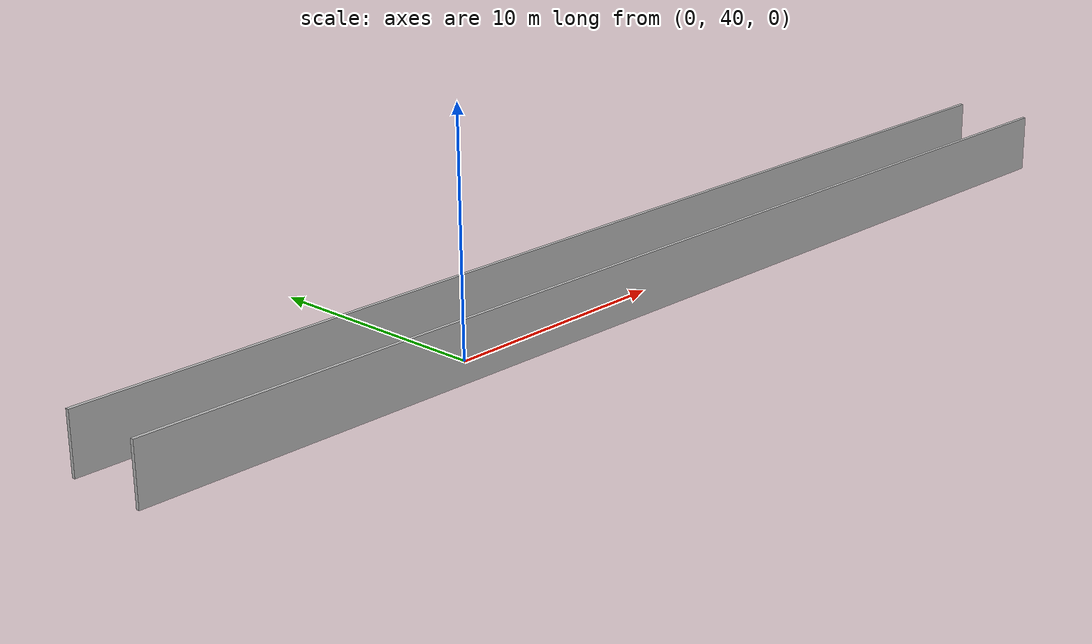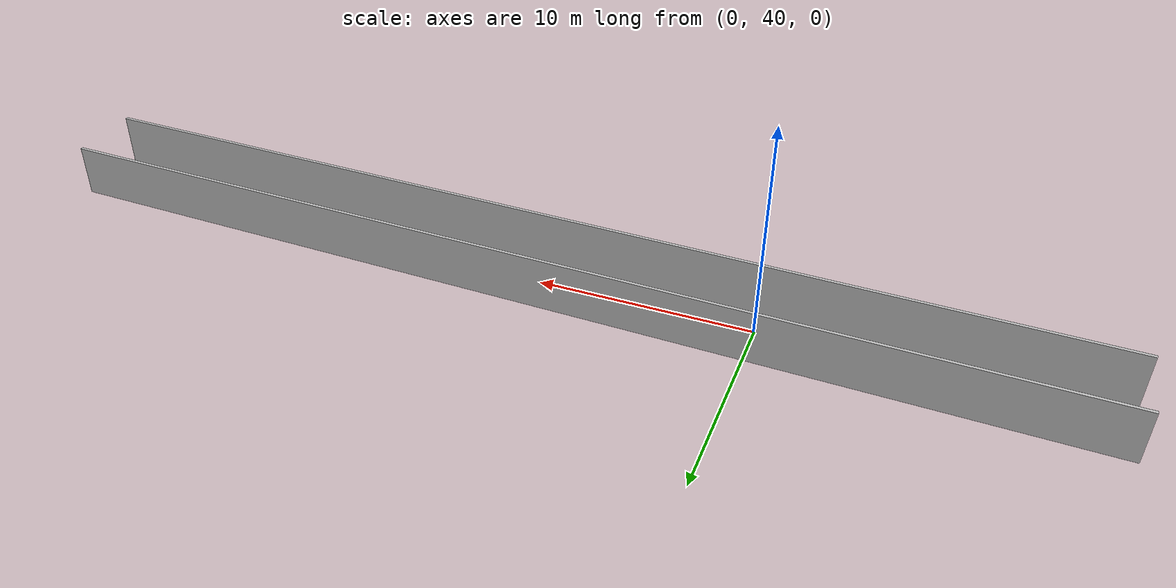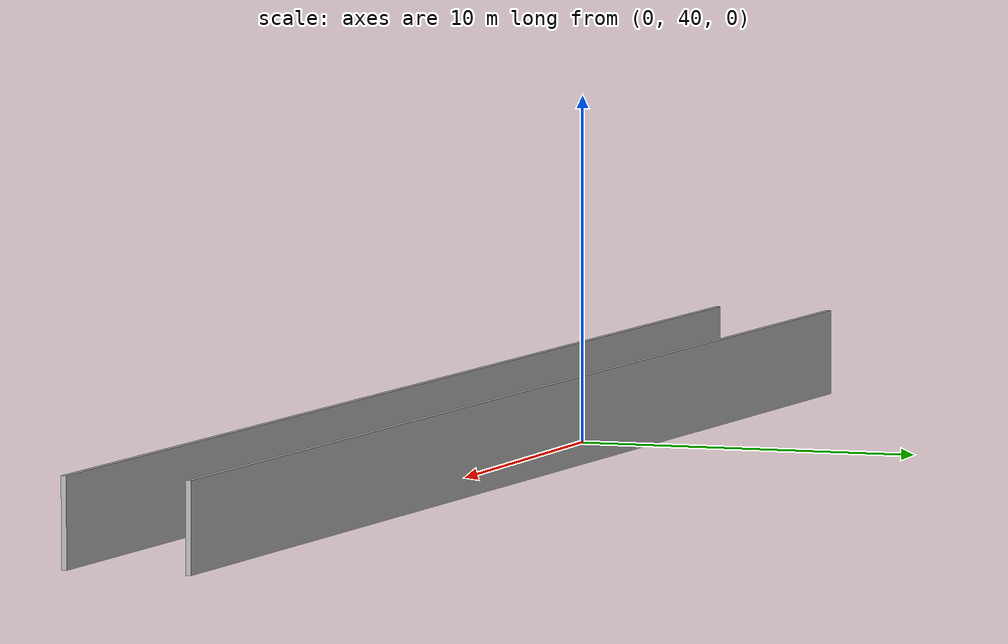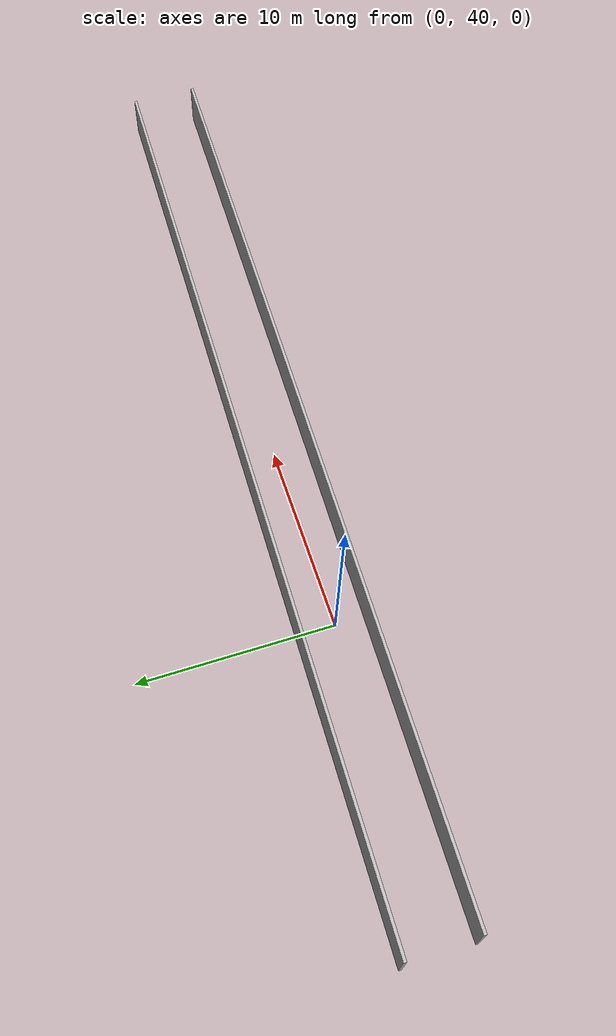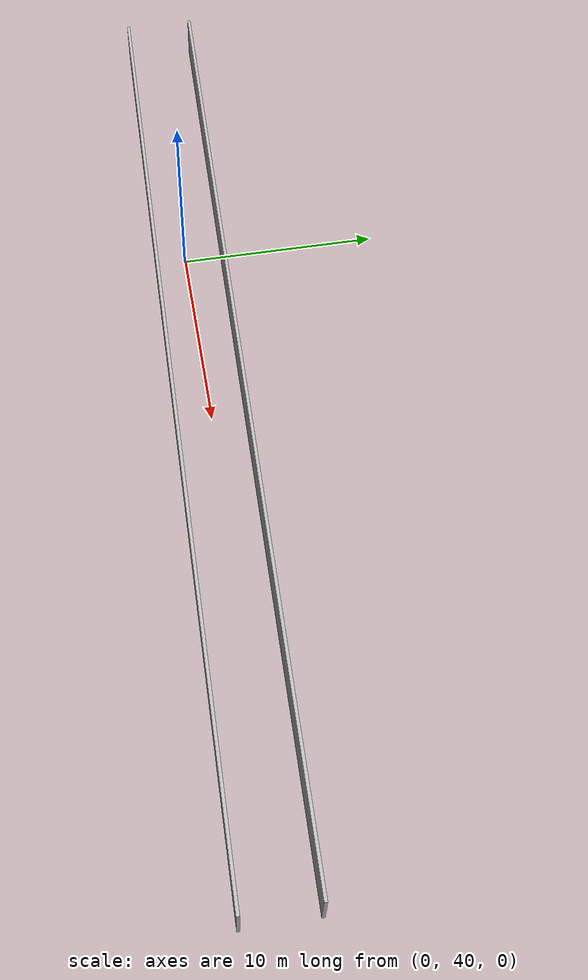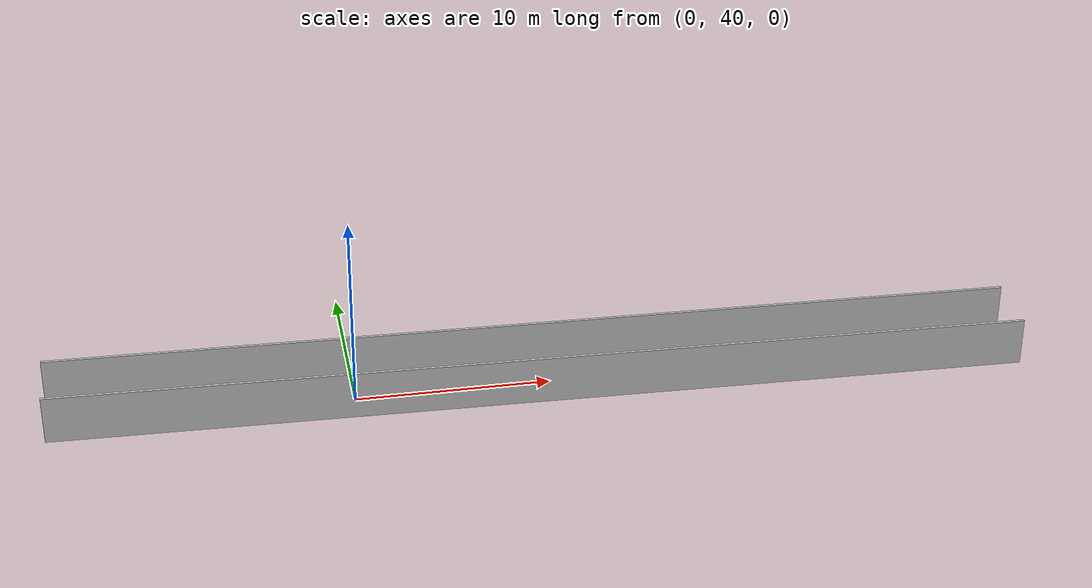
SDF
<?xml version="1.0" ?>
<sdf version="1.6">
  <model name="sps_2902">
    <pose frame="">0 0 0 0 -0 0</pose>
    <static>1</static>
    <self_collide>0</self_collide>
    <allow_auto_disable>0</allow_auto_disable>
    <link name="Wall459">
      <kinematic>0</kinematic>
      <gravity>1</gravity>
      <self_collide>0</self_collide>
      <collision name="collision">
        <geometry>
          <box>
            <size>50.0165 0.15 2.5</size>
          </box>
        </geometry>
        <pose frame="">0 0 0 0 -0 0</pose>
      </collision>
      <visual name="visual">
        <geometry>
          <box>
            <size>50.0165 0.15 2.5</size>
          </box>
        </geometry>
        <pose frame="">0 0 0 0 -0 0</pose>
        <cast_shadows>1</cast_shadows>
        <transparency>0.0</transparency>
      </visual>
      <pose frame="">9.46944 38.2343 1.25 0 -0 3.11591</pose>
    </link>
    <link name="Wall466">
      <kinematic>0</kinematic>
      <gravity>1</gravity>
      <self_collide>0</self_collide>
      <collision name="collision">
        <geometry>
          <box>
            <size>50.0165 0.15 2.5</size>
          </box>
        </geometry>
        <pose frame="">0 0 0 0 -0 0</pose>
      </collision>
      <visual name="visual">
        <geometry>
          <box>
            <size>50.0165 0.15 2.5</size>
          </box>
        </geometry>
        <pose frame="">0 0 0 0 -0 0</pose>
        <cast_shadows>1</cast_shadows>
        <transparency>0.0</transparency>
      </visual>
      <pose frame="">9.46944 41.7352 1.25 0 0 -0.0256802</pose>
    </link>
  </model>
</sdf>
